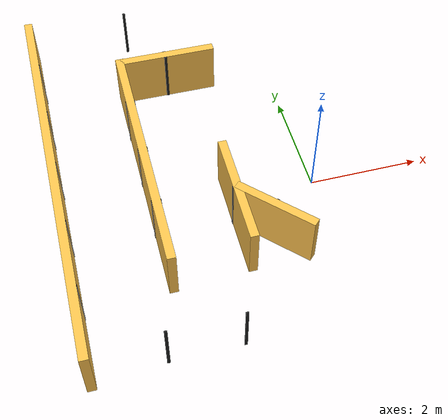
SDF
<sdf version="1.5">
 <model name="Maze_ql_1">
  <link name="Wall_10">
   <pose>-2.02568 2.92333 0 0 -0 3.14159</pose>
   <visual name="Wall_10_Visual">
    <pose>0 0 0.5 0 -0 0</pose>
    <geometry><box><size>1.8711 0.15 1</size></box></geometry>
    <material>
     <script><uri>file://media/materials/scripts/gazebo.material</uri><name>Gazebo/Grey</name></script>
     <ambient>1 0.764706 0.305882 1</ambient>
     <diffuse>0.7 0.7 0.7 1</diffuse>
     <specular>0.01 0.01 0.01 1</specular>
     <emissive>0 0 0 1</emissive>
     <shader type="pixel"/>
    </material>
   </visual>
   <collision name="Wall_10_Collision">
    <pose>0 0 0.5 0 -0 0</pose>
    <geometry><box><size>1.8711 0.15 1</size></box></geometry>
    <surface>
     <friction><ode><mu>1</mu><mu2>1</mu2><fdir1>0 0 0</fdir1><slip1>0</slip1><slip2>0</slip2></ode></friction>
     <bounce><restitution_coefficient>0</restitution_coefficient><threshold>1e+06</threshold></bounce>
     <contact>
      <collide_without_contact>0</collide_without_contact>
      <collide_without_contact_bitmask>1</collide_without_contact_bitmask>
      <collide_bitmask>1</collide_bitmask>
      <ode>
       <soft_cfm>0</soft_cfm>
       <soft_erp>0.2</soft_erp>
       <kp>1e+13</kp>
       <kd>1</kd>
       <max_vel>0.01</max_vel>
       <min_depth>0</min_depth>
      </ode>
      <bullet>
       <split_impulse>1</split_impulse>
       <split_impulse_penetration_threshold>-0.01</split_impulse_penetration_threshold>
       <soft_cfm>0</soft_cfm>
       <soft_erp>0.2</soft_erp>
       <kp>1e+13</kp>
       <kd>1</kd>
      </bullet>
     </contact>
    </surface>
   </collision>
  </link>
  <link name="Wall_11">
   <pose>-2.887 0.69235 0 0 0 -1.5708</pose>
   <visual name="Wall_11_Visual">
    <pose>0 0 0.5 0 -0 0</pose>
    <geometry><box><size>4.62378 0.15 1</size></box></geometry>
    <material>
     <script><uri>file://media/materials/scripts/gazebo.material</uri><name>Gazebo/Grey</name></script>
     <ambient>1 0.764706 0.305882 1</ambient>
     <diffuse>0.7 0.7 0.7 1</diffuse>
     <specular>0.01 0.01 0.01 1</specular>
     <emissive>0 0 0 1</emissive>
     <shader type="pixel"/>
    </material>
   </visual>
   <collision name="Wall_11_Collision">
    <pose>0 0 0.5 0 -0 0</pose>
    <geometry><box><size>4.62378 0.15 1</size></box></geometry>
    <surface>
     <friction><ode><mu>1</mu><mu2>1</mu2><fdir1>0 0 0</fdir1><slip1>0</slip1><slip2>0</slip2></ode></friction>
     <bounce><restitution_coefficient>0</restitution_coefficient><threshold>1e+06</threshold></bounce>
     <contact>
      <collide_without_contact>0</collide_without_contact>
      <collide_without_contact_bitmask>1</collide_without_contact_bitmask>
      <collide_bitmask>1</collide_bitmask>
      <ode>
       <soft_cfm>0</soft_cfm>
       <soft_erp>0.2</soft_erp>
       <kp>1e+13</kp>
       <kd>1</kd>
       <max_vel>0.01</max_vel>
       <min_depth>0</min_depth>
      </ode>
      <bullet>
       <split_impulse>1</split_impulse>
       <split_impulse_penetration_threshold>-0.01</split_impulse_penetration_threshold>
       <soft_cfm>0</soft_cfm>
       <soft_erp>0.2</soft_erp>
       <kp>1e+13</kp>
       <kd>1</kd>
      </bullet>
     </contact>
    </surface>
   </collision>
  </link>
  <link name="Wall_11_clone">
   <pose>-4.44208 0.738947 0 0 0 -1.5708</pose>
   <visual name="ModelPreview_2::Wall_11_clone::Wall_11_Visual">
    <pose>0 0 0.5 0 -0 0</pose>
    <geometry><box><size>7.42809 0.15 1</size></box></geometry>
    <material>
     <script><uri>file://media/materials/scripts/gazebo.material</uri><name>Gazebo/Grey</name></script>
     <ambient>1 0.764706 0.305882 1</ambient>
     <diffuse>0.7 0.7 0.7 1</diffuse>
     <specular>0.01 0.01 0.01 1</specular>
     <emissive>0 0 0 1</emissive>
     <shader type="pixel"/>
    </material>
   </visual>
   <collision name="Wall_11_Collision">
    <pose>0 0 0.5 0 -0 0</pose>
    <geometry><box><size>7.42809 0.15 1</size></box></geometry>
    <surface>
     <friction><ode><mu>1</mu><mu2>1</mu2><fdir1>0 0 0</fdir1><slip1>0</slip1><slip2>0</slip2></ode></friction>
     <bounce><restitution_coefficient>0</restitution_coefficient><threshold>1e+06</threshold></bounce>
     <contact>
      <collide_without_contact>0</collide_without_contact>
      <collide_without_contact_bitmask>1</collide_without_contact_bitmask>
      <collide_bitmask>1</collide_bitmask>
      <ode>
       <soft_cfm>0</soft_cfm>
       <soft_erp>0.2</soft_erp>
       <kp>1e+13</kp>
       <kd>1</kd>
       <max_vel>0.01</max_vel>
       <min_depth>0</min_depth>
      </ode>
      <bullet>
       <split_impulse>1</split_impulse>
       <split_impulse_penetration_threshold>-0.01</split_impulse_penetration_threshold>
       <soft_cfm>0</soft_cfm>
       <soft_erp>0.2</soft_erp>
       <kp>1e+13</kp>
       <kd>1</kd>
      </bullet>
     </contact>
    </surface>
   </collision>
  </link>
  <link name="Wall_15">
   <pose>-1.53187 -0.513425 0 0 -0 1.5708</pose>
   <visual name="Wall_15_Visual">
    <pose>0 0 0.5 0 -0 0</pose>
    <geometry><box><size>2.06622 0.15 1</size></box></geometry>
    <material>
     <script><uri>file://media/materials/scripts/gazebo.material</uri><name>Gazebo/Grey</name></script>
     <ambient>1 0.764706 0.305882 1</ambient>
     <diffuse>0.7 0.7 0.7 1</diffuse>
     <specular>0.01 0.01 0.01 1</specular>
     <emissive>0 0 0 1</emissive>
     <shader type="pixel"/>
    </material>
   </visual>
   <collision name="Wall_15_Collision">
    <pose>0 0 0.5 0 -0 0</pose>
    <geometry><box><size>2.06622 0.15 1</size></box></geometry>
    <surface>
     <friction><ode><mu>1</mu><mu2>1</mu2><fdir1>0 0 0</fdir1><slip1>0</slip1><slip2>0</slip2></ode></friction>
     <bounce><restitution_coefficient>0</restitution_coefficient><threshold>1e+06</threshold></bounce>
     <contact>
      <collide_without_contact>0</collide_without_contact>
      <collide_without_contact_bitmask>1</collide_without_contact_bitmask>
      <collide_bitmask>1</collide_bitmask>
      <ode>
       <soft_cfm>0</soft_cfm>
       <soft_erp>0.2</soft_erp>
       <kp>1e+13</kp>
       <kd>1</kd>
       <max_vel>0.01</max_vel>
       <min_depth>0</min_depth>
      </ode>
      <bullet>
       <split_impulse>1</split_impulse>
       <split_impulse_penetration_threshold>-0.01</split_impulse_penetration_threshold>
       <soft_cfm>0</soft_cfm>
       <soft_erp>0.2</soft_erp>
       <kp>1e+13</kp>
       <kd>1</kd>
      </bullet>
     </contact>
    </surface>
   </collision>
  </link>
  <link name="Wall_24_clone">
   <pose>-1.0172 -1.00075 0 0 0 -0.803995</pose>
   <visual name="ModelPreview_2::Wall_24_clone::Wall_24_Visual">
    <pose>0 0 0.5 0 -0 0</pose>
    <geometry><box><size>1.5 0.15 1</size></box></geometry>
    <material>
     <script><uri>file://media/materials/scripts/gazebo.material</uri><name>Gazebo/Grey</name></script>
     <ambient>1 0.764706 0.305882 1</ambient>
     <diffuse>0.7 0.7 0.7 1</diffuse>
     <specular>0.01 0.01 0.01 1</specular>
     <emissive>0 0 0 1</emissive>
     <shader type="pixel"/>
    </material>
   </visual>
   <collision name="Wall_24_Collision">
    <pose>0 0 0.5 0 -0 0</pose>
    <geometry><box><size>1.5 0.15 1</size></box></geometry>
    <surface>
     <friction><ode><mu>1</mu><mu2>1</mu2><fdir1>0 0 0</fdir1><slip1>0</slip1><slip2>0</slip2></ode></friction>
     <bounce><restitution_coefficient>0</restitution_coefficient><threshold>1e+06</threshold></bounce>
     <contact>
      <collide_without_contact>0</collide_without_contact>
      <collide_without_contact_bitmask>1</collide_without_contact_bitmask>
      <collide_bitmask>1</collide_bitmask>
      <ode>
       <soft_cfm>0</soft_cfm>
       <soft_erp>0.2</soft_erp>
       <kp>1e+13</kp>
       <kd>1</kd>
       <max_vel>0.01</max_vel>
       <min_depth>0</min_depth>
      </ode>
      <bullet>
       <split_impulse>1</split_impulse>
       <split_impulse_penetration_threshold>-0.01</split_impulse_penetration_threshold>
       <soft_cfm>0</soft_cfm>
       <soft_erp>0.2</soft_erp>
       <kp>1e+13</kp>
       <kd>1</kd>
      </bullet>
     </contact>
    </surface>
   </collision>
  </link>
  <link name="Beacon_1">
   <pose>-4.36208 0.738947 0 0 0 -1.5708</pose>
   <visual name="ModelPreview_2::Beacon_1::Beacon_1_Visual">
    <pose>0 0 0.5 0 -0 0</pose>
    <geometry><box><size>0.05 0.01 1</size></box></geometry>
    <material>
     <script><uri>file://media/materials/scripts/gazebo.material</uri><name>Gazebo/Black</name></script>
     <ambient>0 0 0 1</ambient>
     <diffuse>0 0 0 1</diffuse>
     <specular>0.01 0.01 0.01 1</specular>
     <emissive>0 0 0 1</emissive>
     <shader type="pixel"/>
    </material>
   </visual>
   <collision name="Beacon_1_Collision">
    <laser_retro>1</laser_retro>
    <pose>0 0 0.5 0 -0 0</pose>
    <geometry><box><size>0.05 0.01 1</size></box></geometry>
    <surface>
     <friction><ode><mu>1</mu><mu2>1</mu2><fdir1>0 0 0</fdir1><slip1>0</slip1><slip2>0</slip2></ode></friction>
     <bounce><restitution_coefficient>0</restitution_coefficient><threshold>1e+06</threshold></bounce>
     <contact>
      <collide_without_contact>0</collide_without_contact>
      <collide_without_contact_bitmask>1</collide_without_contact_bitmask>
      <collide_bitmask>1</collide_bitmask>
      <ode>
       <soft_cfm>0</soft_cfm>
       <soft_erp>0.2</soft_erp>
       <kp>1e+13</kp>
       <kd>1</kd>
       <max_vel>0.01</max_vel>
       <min_depth>0</min_depth>
      </ode>
      <bullet>
       <split_impulse>1</split_impulse>
       <split_impulse_penetration_threshold>-0.01</split_impulse_penetration_threshold>
       <soft_cfm>0</soft_cfm>
       <soft_erp>0.2</soft_erp>
       <kp>1e+13</kp>
       <kd>1</kd>
      </bullet>
     </contact>
    </surface>
   </collision>
  </link>
  <link name="Beacon_2">
   <pose>-4.36208 1.976962 0 0 0 -1.5708</pose>
   <visual name="ModelPreview_2::Beacon_2::Beacon_2_Visual">
    <pose>0 0 0.5 0 -0 0</pose>
    <geometry><box><size>0.05 0.01 1</size></box></geometry>
    <material>
     <script><uri>file://media/materials/scripts/gazebo.material</uri><name>Gazebo/Black</name></script>
     <ambient>0 0 0 1</ambient>
     <diffuse>0 0 0 1</diffuse>
     <specular>0.01 0.01 0.01 1</specular>
     <emissive>0 0 0 1</emissive>
     <shader type="pixel"/>
    </material>
   </visual>
   <collision name="Beacon_2_Collision">
    <laser_retro>2</laser_retro>
    <pose>0 0 0.5 0 -0 0</pose>
    <geometry><box><size>0.05 0.01 1</size></box></geometry>
    <surface>
     <friction><ode><mu>1</mu><mu2>1</mu2><fdir1>0 0 0</fdir1><slip1>0</slip1><slip2>0</slip2></ode></friction>
     <bounce><restitution_coefficient>0</restitution_coefficient><threshold>1e+06</threshold></bounce>
     <contact>
      <collide_without_contact>0</collide_without_contact>
      <collide_without_contact_bitmask>1</collide_without_contact_bitmask>
      <collide_bitmask>1</collide_bitmask>
      <ode>
       <soft_cfm>0</soft_cfm>
       <soft_erp>0.2</soft_erp>
       <kp>1e+13</kp>
       <kd>1</kd>
       <max_vel>0.01</max_vel>
       <min_depth>0</min_depth>
      </ode>
      <bullet>
       <split_impulse>1</split_impulse>
       <split_impulse_penetration_threshold>-0.01</split_impulse_penetration_threshold>
       <soft_cfm>0</soft_cfm>
       <soft_erp>0.2</soft_erp>
       <kp>1e+13</kp>
       <kd>1</kd>
      </bullet>
     </contact>
    </surface>
   </collision>
  </link>
  <link name="Beacon_3">
   <pose>-4.36208 3.214977 0 0 0 -1.5708</pose>
   <visual name="ModelPreview_2::Beacon_3::Beacon_3_Visual">
    <pose>0 0 0.5 0 -0 0</pose>
    <geometry><box><size>0.05 0.01 1</size></box></geometry>
    <material>
     <script><uri>file://media/materials/scripts/gazebo.material</uri><name>Gazebo/Black</name></script>
     <ambient>0 0 0 1</ambient>
     <diffuse>0 0 0 1</diffuse>
     <specular>0.01 0.01 0.01 1</specular>
     <emissive>0 0 0 1</emissive>
     <shader type="pixel"/>
    </material>
   </visual>
   <collision name="Beacon_3_Collision">
    <laser_retro>3</laser_retro>
    <pose>0 0 0.5 0 -0 0</pose>
    <geometry><box><size>0.05 0.01 1</size></box></geometry>
    <surface>
     <friction><ode><mu>1</mu><mu2>1</mu2><fdir1>0 0 0</fdir1><slip1>0</slip1><slip2>0</slip2></ode></friction>
     <bounce><restitution_coefficient>0</restitution_coefficient><threshold>1e+06</threshold></bounce>
     <contact>
      <collide_without_contact>0</collide_without_contact>
      <collide_without_contact_bitmask>1</collide_without_contact_bitmask>
      <collide_bitmask>1</collide_bitmask>
      <ode>
       <soft_cfm>0</soft_cfm>
       <soft_erp>0.2</soft_erp>
       <kp>1e+13</kp>
       <kd>1</kd>
       <max_vel>0.01</max_vel>
       <min_depth>0</min_depth>
      </ode>
      <bullet>
       <split_impulse>1</split_impulse>
       <split_impulse_penetration_threshold>-0.01</split_impulse_penetration_threshold>
       <soft_cfm>0</soft_cfm>
       <soft_erp>0.2</soft_erp>
       <kp>1e+13</kp>
       <kd>1</kd>
      </bullet>
     </contact>
    </surface>
   </collision>
  </link>
  <link name="Beacon_4">
   <pose>-4.36208 -0.499068 0 0 0 -1.5708</pose>
   <visual name="ModelPreview_2::Beacon_4::Beacon_4_Visual">
    <pose>0 0 0.5 0 -0 0</pose>
    <geometry><box><size>0.05 0.01 1</size></box></geometry>
    <material>
     <script><uri>file://media/materials/scripts/gazebo.material</uri><name>Gazebo/Black</name></script>
     <ambient>0 0 0 1</ambient>
     <diffuse>0 0 0 1</diffuse>
     <specular>0.01 0.01 0.01 1</specular>
     <emissive>0 0 0 1</emissive>
     <shader type="pixel"/>
    </material>
   </visual>
   <collision name="Beacon_4_Collision">
    <laser_retro>4</laser_retro>
    <pose>0 0 0.5 0 -0 0</pose>
    <geometry><box><size>0.05 0.01 1</size></box></geometry>
    <surface>
     <friction><ode><mu>1</mu><mu2>1</mu2><fdir1>0 0 0</fdir1><slip1>0</slip1><slip2>0</slip2></ode></friction>
     <bounce><restitution_coefficient>0</restitution_coefficient><threshold>1e+06</threshold></bounce>
     <contact>
      <collide_without_contact>0</collide_without_contact>
      <collide_without_contact_bitmask>1</collide_without_contact_bitmask>
      <collide_bitmask>1</collide_bitmask>
      <ode>
       <soft_cfm>0</soft_cfm>
       <soft_erp>0.2</soft_erp>
       <kp>1e+13</kp>
       <kd>1</kd>
       <max_vel>0.01</max_vel>
       <min_depth>0</min_depth>
      </ode>
      <bullet>
       <split_impulse>1</split_impulse>
       <split_impulse_penetration_threshold>-0.01</split_impulse_penetration_threshold>
       <soft_cfm>0</soft_cfm>
       <soft_erp>0.2</soft_erp>
       <kp>1e+13</kp>
       <kd>1</kd>
      </bullet>
     </contact>
    </surface>
   </collision>
  </link>
  <link name="Beacon_5">
   <pose>-4.36208 -1.737083 0 0 0 -1.5708</pose>
   <visual name="ModelPreview_2::Beacon_5::Beacon_5_Visual">
    <pose>0 0 0.5 0 -0 0</pose>
    <geometry><box><size>0.05 0.01 1</size></box></geometry>
    <material>
     <script><uri>file://media/materials/scripts/gazebo.material</uri><name>Gazebo/Black</name></script>
     <ambient>0 0 0 1</ambient>
     <diffuse>0 0 0 1</diffuse>
     <specular>0.01 0.01 0.01 1</specular>
     <emissive>0 0 0 1</emissive>
     <shader type="pixel"/>
    </material>
   </visual>
   <collision name="Beacon_5_Collision">
    <laser_retro>5</laser_retro>
    <pose>0 0 0.5 0 -0 0</pose>
    <geometry><box><size>0.05 0.01 1</size></box></geometry>
    <surface>
     <friction><ode><mu>1</mu><mu2>1</mu2><fdir1>0 0 0</fdir1><slip1>0</slip1><slip2>0</slip2></ode></friction>
     <bounce><restitution_coefficient>0</restitution_coefficient><threshold>1e+06</threshold></bounce>
     <contact>
      <collide_without_contact>0</collide_without_contact>
      <collide_without_contact_bitmask>1</collide_without_contact_bitmask>
      <collide_bitmask>1</collide_bitmask>
      <ode>
       <soft_cfm>0</soft_cfm>
       <soft_erp>0.2</soft_erp>
       <kp>1e+13</kp>
       <kd>1</kd>
       <max_vel>0.01</max_vel>
       <min_depth>0</min_depth>
      </ode>
      <bullet>
       <split_impulse>1</split_impulse>
       <split_impulse_penetration_threshold>-0.01</split_impulse_penetration_threshold>
       <soft_cfm>0</soft_cfm>
       <soft_erp>0.2</soft_erp>
       <kp>1e+13</kp>
       <kd>1</kd>
      </bullet>
     </contact>
    </surface>
   </collision>
  </link>
  <link name="Beacon_9">
   <pose>-2.011997 -2.81307 0 0 0 -1.5708</pose>
   <visual name="ModelPreview_2::Beacon_9::Beacon_9_Visual">
    <pose>0 0 0.5 0 -0 0</pose>
    <geometry><box><size>0.01 0.05 1</size></box></geometry>
    <material>
     <script><uri>file://media/materials/scripts/gazebo.material</uri><name>Gazebo/Black</name></script>
     <ambient>0 0 0 1</ambient>
     <diffuse>0 0 0 1</diffuse>
     <specular>0.01 0.01 0.01 1</specular>
     <emissive>0 0 0 1</emissive>
     <shader type="pixel"/>
    </material>
   </visual>
   <collision name="Beacon_9_Collision">
    <laser_retro>9</laser_retro>
    <pose>0 0 0.5 0 -0 0</pose>
    <geometry><box><size>0.01 0.05 1</size></box></geometry>
    <surface>
     <friction><ode><mu>1</mu><mu2>1</mu2><fdir1>0 0 0</fdir1><slip1>0</slip1><slip2>0</slip2></ode></friction>
     <bounce><restitution_coefficient>0</restitution_coefficient><threshold>1e+06</threshold></bounce>
     <contact>
      <collide_without_contact>0</collide_without_contact>
      <collide_without_contact_bitmask>1</collide_without_contact_bitmask>
      <collide_bitmask>1</collide_bitmask>
      <ode>
       <soft_cfm>0</soft_cfm>
       <soft_erp>0.2</soft_erp>
       <kp>1e+13</kp>
       <kd>1</kd>
       <max_vel>0.01</max_vel>
       <min_depth>0</min_depth>
      </ode>
      <bullet>
       <split_impulse>1</split_impulse>
       <split_impulse_penetration_threshold>-0.01</split_impulse_penetration_threshold>
       <soft_cfm>0</soft_cfm>
       <soft_erp>0.2</soft_erp>
       <kp>1e+13</kp>
       <kd>1</kd>
      </bullet>
     </contact>
    </surface>
   </collision>
  </link>
  <link name="Beacon_10">
   <pose>-3.236974 -2.81307 0 0 0 -1.5708</pose>
   <visual name="ModelPreview_2::Beacon_10::Beacon_10_Visual">
    <pose>0 0 0.5 0 -0 0</pose>
    <geometry><box><size>0.01 0.05 1</size></box></geometry>
    <material>
     <script><uri>file://media/materials/scripts/gazebo.material</uri><name>Gazebo/Black</name></script>
     <ambient>0 0 0 1</ambient>
     <diffuse>0 0 0 1</diffuse>
     <specular>0.01 0.01 0.01 1</specular>
     <emissive>0 0 0 1</emissive>
     <shader type="pixel"/>
    </material>
   </visual>
   <collision name="Beacon_10_Collision">
    <laser_retro>10</laser_retro>
    <pose>0 0 0.5 0 -0 0</pose>
    <geometry><box><size>0.01 0.05 1</size></box></geometry>
    <surface>
     <friction><ode><mu>1</mu><mu2>1</mu2><fdir1>0 0 0</fdir1><slip1>0</slip1><slip2>0</slip2></ode></friction>
     <bounce><restitution_coefficient>0</restitution_coefficient><threshold>1e+06</threshold></bounce>
     <contact>
      <collide_without_contact>0</collide_without_contact>
      <collide_without_contact_bitmask>1</collide_without_contact_bitmask>
      <collide_bitmask>1</collide_bitmask>
      <ode>
       <soft_cfm>0</soft_cfm>
       <soft_erp>0.2</soft_erp>
       <kp>1e+13</kp>
       <kd>1</kd>
       <max_vel>0.01</max_vel>
       <min_depth>0</min_depth>
      </ode>
      <bullet>
       <split_impulse>1</split_impulse>
       <split_impulse_penetration_threshold>-0.01</split_impulse_penetration_threshold>
       <soft_cfm>0</soft_cfm>
       <soft_erp>0.2</soft_erp>
       <kp>1e+13</kp>
       <kd>1</kd>
      </bullet>
     </contact>
    </surface>
   </collision>
  </link>
  <link name="Beacon_14">
   <pose>-2.57 4.29517 0 0 0 -1.5708</pose>
   <visual name="ModelPreview_2::Beacon_14::Beacon_14_Visual">
    <pose>0 0 0.5 0 -0 0</pose>
    <geometry><box><size>0.01 0.05 1</size></box></geometry>
    <material>
     <script><uri>file://media/materials/scripts/gazebo.material</uri><name>Gazebo/Black</name></script>
     <ambient>0 0 0 1</ambient>
     <diffuse>0 0 0 1</diffuse>
     <specular>0.01 0.01 0.01 1</specular>
     <emissive>0 0 0 1</emissive>
     <shader type="pixel"/>
    </material>
   </visual>
   <collision name="Beacon_14_Collision">
    <laser_retro>14</laser_retro>
    <pose>0 0 0.5 0 -0 0</pose>
    <geometry><box><size>0.01 0.05 1</size></box></geometry>
    <surface>
     <friction><ode><mu>1</mu><mu2>1</mu2><fdir1>0 0 0</fdir1><slip1>0</slip1><slip2>0</slip2></ode></friction>
     <bounce><restitution_coefficient>0</restitution_coefficient><threshold>1e+06</threshold></bounce>
     <contact>
      <collide_without_contact>0</collide_without_contact>
      <collide_without_contact_bitmask>1</collide_without_contact_bitmask>
      <collide_bitmask>1</collide_bitmask>
      <ode>
       <soft_cfm>0</soft_cfm>
       <soft_erp>0.2</soft_erp>
       <kp>1e+13</kp>
       <kd>1</kd>
       <max_vel>0.01</max_vel>
       <min_depth>0</min_depth>
      </ode>
      <bullet>
       <split_impulse>1</split_impulse>
       <split_impulse_penetration_threshold>-0.01</split_impulse_penetration_threshold>
       <soft_cfm>0</soft_cfm>
       <soft_erp>0.2</soft_erp>
       <kp>1e+13</kp>
       <kd>1</kd>
      </bullet>
     </contact>
    </surface>
   </collision>
  </link>
  <link name="Beacon_15">
   <pose>-2.807 0.69235 0 0 0 -1.5708</pose>
   <visual name="ModelPreview_2::Beacon_15::Beacon_15_Visual">
    <pose>0 0 0.5 0 -0 0</pose>
    <geometry><box><size>0.05 0.01 1</size></box></geometry>
    <material>
     <script><uri>file://media/materials/scripts/gazebo.material</uri><name>Gazebo/Black</name></script>
     <ambient>0 0 0 1</ambient>
     <diffuse>0 0 0 1</diffuse>
     <specular>0.01 0.01 0.01 1</specular>
     <emissive>0 0 0 1</emissive>
     <shader type="pixel"/>
    </material>
   </visual>
   <collision name="Beacon_15_Collision">
    <laser_retro>15</laser_retro>
    <pose>0 0 0.5 0 -0 0</pose>
    <geometry><box><size>0.05 0.01 1</size></box></geometry>
    <surface>
     <friction><ode><mu>1</mu><mu2>1</mu2><fdir1>0 0 0</fdir1><slip1>0</slip1><slip2>0</slip2></ode></friction>
     <bounce><restitution_coefficient>0</restitution_coefficient><threshold>1e+06</threshold></bounce>
     <contact>
      <collide_without_contact>0</collide_without_contact>
      <collide_without_contact_bitmask>1</collide_without_contact_bitmask>
      <collide_bitmask>1</collide_bitmask>
      <ode>
       <soft_cfm>0</soft_cfm>
       <soft_erp>0.2</soft_erp>
       <kp>1e+13</kp>
       <kd>1</kd>
       <max_vel>0.01</max_vel>
       <min_depth>0</min_depth>
      </ode>
      <bullet>
       <split_impulse>1</split_impulse>
       <split_impulse_penetration_threshold>-0.01</split_impulse_penetration_threshold>
       <soft_cfm>0</soft_cfm>
       <soft_erp>0.2</soft_erp>
       <kp>1e+13</kp>
       <kd>1</kd>
      </bullet>
     </contact>
    </surface>
   </collision>
  </link>
  <link name="Beacon_16">
   <pose>-2.967 0.69235 0 0 0 -1.5708</pose>
   <visual name="ModelPreview_2::Beacon_16::Beacon_16_Visual">
    <pose>0 0 0.5 0 -0 0</pose>
    <geometry><box><size>0.05 0.01 1</size></box></geometry>
    <material>
     <script><uri>file://media/materials/scripts/gazebo.material</uri><name>Gazebo/Black</name></script>
     <ambient>0 0 0 1</ambient>
     <diffuse>0 0 0 1</diffuse>
     <specular>0.01 0.01 0.01 1</specular>
     <emissive>0 0 0 1</emissive>
     <shader type="pixel"/>
    </material>
   </visual>
   <collision name="Beacon_16_Collision">
    <laser_retro>16</laser_retro>
    <pose>0 0 0.5 0 -0 0</pose>
    <geometry><box><size>0.05 0.01 1</size></box></geometry>
    <surface>
     <friction><ode><mu>1</mu><mu2>1</mu2><fdir1>0 0 0</fdir1><slip1>0</slip1><slip2>0</slip2></ode></friction>
     <bounce><restitution_coefficient>0</restitution_coefficient><threshold>1e+06</threshold></bounce>
     <contact>
      <collide_without_contact>0</collide_without_contact>
      <collide_without_contact_bitmask>1</collide_without_contact_bitmask>
      <collide_bitmask>1</collide_bitmask>
      <ode>
       <soft_cfm>0</soft_cfm>
       <soft_erp>0.2</soft_erp>
       <kp>1e+13</kp>
       <kd>1</kd>
       <max_vel>0.01</max_vel>
       <min_depth>0</min_depth>
      </ode>
      <bullet>
       <split_impulse>1</split_impulse>
       <split_impulse_penetration_threshold>-0.01</split_impulse_penetration_threshold>
       <soft_cfm>0</soft_cfm>
       <soft_erp>0.2</soft_erp>
       <kp>1e+13</kp>
       <kd>1</kd>
      </bullet>
     </contact>
    </surface>
   </collision>
  </link>
  <link name="Beacon_17">
   <pose>-2.807 1.848295 0 0 0 -1.5708</pose>
   <visual name="ModelPreview_2::Beacon_17::Beacon_17_Visual">
    <pose>0 0 0.5 0 -0 0</pose>
    <geometry><box><size>0.05 0.01 1</size></box></geometry>
    <material>
     <script><uri>file://media/materials/scripts/gazebo.material</uri><name>Gazebo/Black</name></script>
     <ambient>0 0 0 1</ambient>
     <diffuse>0 0 0 1</diffuse>
     <specular>0.01 0.01 0.01 1</specular>
     <emissive>0 0 0 1</emissive>
     <shader type="pixel"/>
    </material>
   </visual>
   <collision name="Beacon_17_Collision">
    <laser_retro>17</laser_retro>
    <pose>0 0 0.5 0 -0 0</pose>
    <geometry><box><size>0.05 0.01 1</size></box></geometry>
    <surface>
     <friction><ode><mu>1</mu><mu2>1</mu2><fdir1>0 0 0</fdir1><slip1>0</slip1><slip2>0</slip2></ode></friction>
     <bounce><restitution_coefficient>0</restitution_coefficient><threshold>1e+06</threshold></bounce>
     <contact>
      <collide_without_contact>0</collide_without_contact>
      <collide_without_contact_bitmask>1</collide_without_contact_bitmask>
      <collide_bitmask>1</collide_bitmask>
      <ode>
       <soft_cfm>0</soft_cfm>
       <soft_erp>0.2</soft_erp>
       <kp>1e+13</kp>
       <kd>1</kd>
       <max_vel>0.01</max_vel>
       <min_depth>0</min_depth>
      </ode>
      <bullet>
       <split_impulse>1</split_impulse>
       <split_impulse_penetration_threshold>-0.01</split_impulse_penetration_threshold>
       <soft_cfm>0</soft_cfm>
       <soft_erp>0.2</soft_erp>
       <kp>1e+13</kp>
       <kd>1</kd>
      </bullet>
     </contact>
    </surface>
   </collision>
  </link>
  <link name="Beacon_18">
   <pose>-2.967 1.848295 0 0 0 -1.5708</pose>
   <visual name="ModelPreview_2::Beacon_18::Beacon_18_Visual">
    <pose>0 0 0.5 0 -0 0</pose>
    <geometry><box><size>0.05 0.01 1</size></box></geometry>
    <material>
     <script><uri>file://media/materials/scripts/gazebo.material</uri><name>Gazebo/Black</name></script>
     <ambient>0 0 0 1</ambient>
     <diffuse>0 0 0 1</diffuse>
     <specular>0.01 0.01 0.01 1</specular>
     <emissive>0 0 0 1</emissive>
     <shader type="pixel"/>
    </material>
   </visual>
   <collision name="Beacon_18_Collision">
    <laser_retro>18</laser_retro>
    <pose>0 0 0.5 0 -0 0</pose>
    <geometry><box><size>0.05 0.01 1</size></box></geometry>
    <surface>
     <friction><ode><mu>1</mu><mu2>1</mu2><fdir1>0 0 0</fdir1><slip1>0</slip1><slip2>0</slip2></ode></friction>
     <bounce><restitution_coefficient>0</restitution_coefficient><threshold>1e+06</threshold></bounce>
     <contact>
      <collide_without_contact>0</collide_without_contact>
      <collide_without_contact_bitmask>1</collide_without_contact_bitmask>
      <collide_bitmask>1</collide_bitmask>
      <ode>
       <soft_cfm>0</soft_cfm>
       <soft_erp>0.2</soft_erp>
       <kp>1e+13</kp>
       <kd>1</kd>
       <max_vel>0.01</max_vel>
       <min_depth>0</min_depth>
      </ode>
      <bullet>
       <split_impulse>1</split_impulse>
       <split_impulse_penetration_threshold>-0.01</split_impulse_penetration_threshold>
       <soft_cfm>0</soft_cfm>
       <soft_erp>0.2</soft_erp>
       <kp>1e+13</kp>
       <kd>1</kd>
      </bullet>
     </contact>
    </surface>
   </collision>
  </link>
  <link name="Beacon_19">
   <pose>-2.807 -0.463595 0 0 0 -1.5708</pose>
   <visual name="ModelPreview_2::Beacon_19::Beacon_19_Visual">
    <pose>0 0 0.5 0 -0 0</pose>
    <geometry><box><size>0.05 0.01 1</size></box></geometry>
    <material>
     <script><uri>file://media/materials/scripts/gazebo.material</uri><name>Gazebo/Black</name></script>
     <ambient>0 0 0 1</ambient>
     <diffuse>0 0 0 1</diffuse>
     <specular>0.01 0.01 0.01 1</specular>
     <emissive>0 0 0 1</emissive>
     <shader type="pixel"/>
    </material>
   </visual>
   <collision name="Beacon_19_Collision">
    <laser_retro>19</laser_retro>
    <pose>0 0 0.5 0 -0 0</pose>
    <geometry><box><size>0.05 0.01 1</size></box></geometry>
    <surface>
     <friction><ode><mu>1</mu><mu2>1</mu2><fdir1>0 0 0</fdir1><slip1>0</slip1><slip2>0</slip2></ode></friction>
     <bounce><restitution_coefficient>0</restitution_coefficient><threshold>1e+06</threshold></bounce>
     <contact>
      <collide_without_contact>0</collide_without_contact>
      <collide_without_contact_bitmask>1</collide_without_contact_bitmask>
      <collide_bitmask>1</collide_bitmask>
      <ode>
       <soft_cfm>0</soft_cfm>
       <soft_erp>0.2</soft_erp>
       <kp>1e+13</kp>
       <kd>1</kd>
       <max_vel>0.01</max_vel>
       <min_depth>0</min_depth>
      </ode>
      <bullet>
       <split_impulse>1</split_impulse>
       <split_impulse_penetration_threshold>-0.01</split_impulse_penetration_threshold>
       <soft_cfm>0</soft_cfm>
       <soft_erp>0.2</soft_erp>
       <kp>1e+13</kp>
       <kd>1</kd>
      </bullet>
     </contact>
    </surface>
   </collision>
  </link>
  <link name="Beacon_20">
   <pose>-2.967 -0.463595 0 0 0 -1.5708</pose>
   <visual name="ModelPreview_2::Beacon_20::Beacon_20_Visual">
    <pose>0 0 0.5 0 -0 0</pose>
    <geometry><box><size>0.05 0.01 1</size></box></geometry>
    <material>
     <script><uri>file://media/materials/scripts/gazebo.material</uri><name>Gazebo/Black</name></script>
     <ambient>0 0 0 1</ambient>
     <diffuse>0 0 0 1</diffuse>
     <specular>0.01 0.01 0.01 1</specular>
     <emissive>0 0 0 1</emissive>
     <shader type="pixel"/>
    </material>
   </visual>
   <collision name="Beacon_20_Collision">
    <laser_retro>20</laser_retro>
    <pose>0 0 0.5 0 -0 0</pose>
    <geometry><box><size>0.05 0.01 1</size></box></geometry>
    <surface>
     <friction><ode><mu>1</mu><mu2>1</mu2><fdir1>0 0 0</fdir1><slip1>0</slip1><slip2>0</slip2></ode></friction>
     <bounce><restitution_coefficient>0</restitution_coefficient><threshold>1e+06</threshold></bounce>
     <contact>
      <collide_without_contact>0</collide_without_contact>
      <collide_without_contact_bitmask>1</collide_without_contact_bitmask>
      <collide_bitmask>1</collide_bitmask>
      <ode>
       <soft_cfm>0</soft_cfm>
       <soft_erp>0.2</soft_erp>
       <kp>1e+13</kp>
       <kd>1</kd>
       <max_vel>0.01</max_vel>
       <min_depth>0</min_depth>
      </ode>
      <bullet>
       <split_impulse>1</split_impulse>
       <split_impulse_penetration_threshold>-0.01</split_impulse_penetration_threshold>
       <soft_cfm>0</soft_cfm>
       <soft_erp>0.2</soft_erp>
       <kp>1e+13</kp>
       <kd>1</kd>
      </bullet>
     </contact>
    </surface>
   </collision>
  </link>
  <link name="Beacon_21">
   <pose>-2.02568 2.84333 0 0 0 -1.5708</pose>
   <visual name="ModelPreview_2::Beacon_21::Beacon_21_Visual">
    <pose>0 0 0.5 0 -0 0</pose>
    <geometry><box><size>0.01 0.05 1</size></box></geometry>
    <material>
     <script><uri>file://media/materials/scripts/gazebo.material</uri><name>Gazebo/Black</name></script>
     <ambient>0 0 0 1</ambient>
     <diffuse>0 0 0 1</diffuse>
     <specular>0.01 0.01 0.01 1</specular>
     <emissive>0 0 0 1</emissive>
     <shader type="pixel"/>
    </material>
   </visual>
   <collision name="Beacon_21_Collision">
    <laser_retro>21</laser_retro>
    <pose>0 0 0.5 0 -0 0</pose>
    <geometry><box><size>0.01 0.05 1</size></box></geometry>
    <surface>
     <friction><ode><mu>1</mu><mu2>1</mu2><fdir1>0 0 0</fdir1><slip1>0</slip1><slip2>0</slip2></ode></friction>
     <bounce><restitution_coefficient>0</restitution_coefficient><threshold>1e+06</threshold></bounce>
     <contact>
      <collide_without_contact>0</collide_without_contact>
      <collide_without_contact_bitmask>1</collide_without_contact_bitmask>
      <collide_bitmask>1</collide_bitmask>
      <ode>
       <soft_cfm>0</soft_cfm>
       <soft_erp>0.2</soft_erp>
       <kp>1e+13</kp>
       <kd>1</kd>
       <max_vel>0.01</max_vel>
       <min_depth>0</min_depth>
      </ode>
      <bullet>
       <split_impulse>1</split_impulse>
       <split_impulse_penetration_threshold>-0.01</split_impulse_penetration_threshold>
       <soft_cfm>0</soft_cfm>
       <soft_erp>0.2</soft_erp>
       <kp>1e+13</kp>
       <kd>1</kd>
      </bullet>
     </contact>
    </surface>
   </collision>
  </link>
  <link name="Beacon_22">
   <pose>-2.02568 3.00333 0 0 0 -1.5708</pose>
   <visual name="ModelPreview_2::Beacon_22::Beacon_22_Visual">
    <pose>0 0 0.5 0 -0 0</pose>
    <geometry><box><size>0.01 0.05 1</size></box></geometry>
    <material>
     <script><uri>file://media/materials/scripts/gazebo.material</uri><name>Gazebo/Black</name></script>
     <ambient>0 0 0 1</ambient>
     <diffuse>0 0 0 1</diffuse>
     <specular>0.01 0.01 0.01 1</specular>
     <emissive>0 0 0 1</emissive>
     <shader type="pixel"/>
    </material>
   </visual>
   <collision name="Beacon_22_Collision">
    <laser_retro>22</laser_retro>
    <pose>0 0 0.5 0 -0 0</pose>
    <geometry><box><size>0.01 0.05 1</size></box></geometry>
    <surface>
     <friction><ode><mu>1</mu><mu2>1</mu2><fdir1>0 0 0</fdir1><slip1>0</slip1><slip2>0</slip2></ode></friction>
     <bounce><restitution_coefficient>0</restitution_coefficient><threshold>1e+06</threshold></bounce>
     <contact>
      <collide_without_contact>0</collide_without_contact>
      <collide_without_contact_bitmask>1</collide_without_contact_bitmask>
      <collide_bitmask>1</collide_bitmask>
      <ode>
       <soft_cfm>0</soft_cfm>
       <soft_erp>0.2</soft_erp>
       <kp>1e+13</kp>
       <kd>1</kd>
       <max_vel>0.01</max_vel>
       <min_depth>0</min_depth>
      </ode>
      <bullet>
       <split_impulse>1</split_impulse>
       <split_impulse_penetration_threshold>-0.01</split_impulse_penetration_threshold>
       <soft_cfm>0</soft_cfm>
       <soft_erp>0.2</soft_erp>
       <kp>1e+13</kp>
       <kd>1</kd>
      </bullet>
     </contact>
    </surface>
   </collision>
  </link>
  <link name="Beacon_27">
   <pose>-1.61187 -0.513425 0 0 0 -1.5708</pose>
   <visual name="ModelPreview_2::Beacon_27::Beacon_27_Visual">
    <pose>0 0 0.5 0 -0 0</pose>
    <geometry><box><size>0.05 0.01 1</size></box></geometry>
    <material>
     <script><uri>file://media/materials/scripts/gazebo.material</uri><name>Gazebo/Black</name></script>
     <ambient>0 0 0 1</ambient>
     <diffuse>0 0 0 1</diffuse>
     <specular>0.01 0.01 0.01 1</specular>
     <emissive>0 0 0 1</emissive>
     <shader type="pixel"/>
    </material>
   </visual>
   <collision name="Beacon_27_Collision">
    <laser_retro>27</laser_retro>
    <pose>0 0 0.5 0 -0 0</pose>
    <geometry><box><size>0.05 0.01 1</size></box></geometry>
    <surface>
     <friction><ode><mu>1</mu><mu2>1</mu2><fdir1>0 0 0</fdir1><slip1>0</slip1><slip2>0</slip2></ode></friction>
     <bounce><restitution_coefficient>0</restitution_coefficient><threshold>1e+06</threshold></bounce>
     <contact>
      <collide_without_contact>0</collide_without_contact>
      <collide_without_contact_bitmask>1</collide_without_contact_bitmask>
      <collide_bitmask>1</collide_bitmask>
      <ode>
       <soft_cfm>0</soft_cfm>
       <soft_erp>0.2</soft_erp>
       <kp>1e+13</kp>
       <kd>1</kd>
       <max_vel>0.01</max_vel>
       <min_depth>0</min_depth>
      </ode>
      <bullet>
       <split_impulse>1</split_impulse>
       <split_impulse_penetration_threshold>-0.01</split_impulse_penetration_threshold>
       <soft_cfm>0</soft_cfm>
       <soft_erp>0.2</soft_erp>
       <kp>1e+13</kp>
       <kd>1</kd>
      </bullet>
     </contact>
    </surface>
   </collision>
  </link>
  <link name="Beacon_28">
   <pose>-0.9596 -0.94525 0 0 0 -0.803995</pose>
   <visual name="ModelPreview_2::Beacon_28::Beacon_28_Visual">
    <pose>0 0 0.5 0 -0 0</pose>
    <geometry><box><size>0.05 0.01 1</size></box></geometry>
    <material>
     <script><uri>file://media/materials/scripts/gazebo.material</uri><name>Gazebo/Black</name></script>
     <ambient>0 0 0 1</ambient>
     <diffuse>0 0 0 1</diffuse>
     <specular>0.01 0.01 0.01 1</specular>
     <emissive>0 0 0 1</emissive>
     <shader type="pixel"/>
    </material>
   </visual>
   <collision name="Beacon_28_Collision">
    <laser_retro>28</laser_retro>
    <pose>0 0 0.5 0 -0 0</pose>
    <geometry><box><size>0.05 0.01 1</size></box></geometry>
    <surface>
     <friction><ode><mu>1</mu><mu2>1</mu2><fdir1>0 0 0</fdir1><slip1>0</slip1><slip2>0</slip2></ode></friction>
     <bounce><restitution_coefficient>0</restitution_coefficient><threshold>1e+06</threshold></bounce>
     <contact>
      <collide_without_contact>0</collide_without_contact>
      <collide_without_contact_bitmask>1</collide_without_contact_bitmask>
      <collide_bitmask>1</collide_bitmask>
      <ode>
       <soft_cfm>0</soft_cfm>
       <soft_erp>0.2</soft_erp>
       <kp>1e+13</kp>
       <kd>1</kd>
       <max_vel>0.01</max_vel>
       <min_depth>0</min_depth>
      </ode>
      <bullet>
       <split_impulse>1</split_impulse>
       <split_impulse_penetration_threshold>-0.01</split_impulse_penetration_threshold>
       <soft_cfm>0</soft_cfm>
       <soft_erp>0.2</soft_erp>
       <kp>1e+13</kp>
       <kd>1</kd>
      </bullet>
     </contact>
    </surface>
   </collision>
  </link>
  <static>1</static>
 </model>
</sdf>
